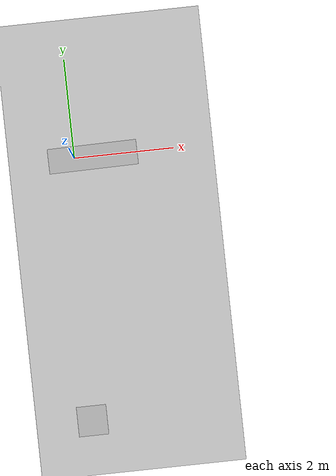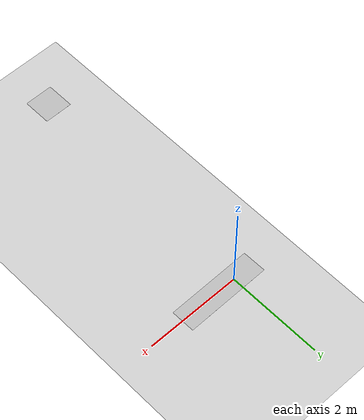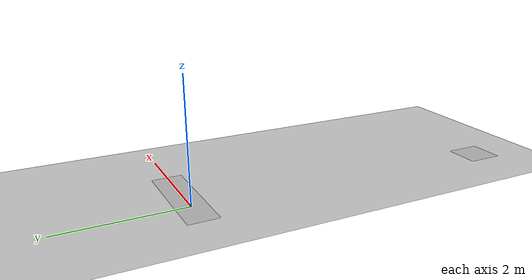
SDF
<sdf version="1.6">
 <world name="default">
  <light name="sun" type="directional">
   <pose>0 0 10 0 -0 0</pose>
   <diffuse>0.8 0.8 0.8 1</diffuse>
   <specular>0.2 0.2 0.2 1</specular>
   <attenuation>
    <range>1000</range>
    <constant>0.9</constant>
    <linear>0.01</linear>
    <quadratic>0.001</quadratic>
   </attenuation>
   <direction>-0.5 0.1 -0.9</direction>
  </light>
  <model name="ground_plane">
   <static>1</static>
   <link name="link">
    <collision name="collision">
     <geometry><plane><normal>0 0 1</normal><size>100 100</size></plane></geometry>
     <surface>
      <contact><collide_bitmask>65535</collide_bitmask></contact>
      <friction><ode><mu>100</mu><mu2>50</mu2></ode></friction>
     </surface>
    </collision>
    <visual name="visual">
     <cast_shadows>0</cast_shadows>
     <geometry><plane><normal>0 0 1</normal><size>100 100</size></plane></geometry>
     <material>
      <script><uri>file://media/materials/scripts/gazebo.material</uri><name>Gazebo/Grey</name></script>
     </material>
    </visual>
   </link>
  </model>
  <gravity>0 0 -9.8</gravity>
  <magnetic_field>6e-06 2.3e-05 -4.2e-05</magnetic_field>
  <atmosphere type="adiabatic"/>
  <physics name="default_physics" default="0" type="ode">
   <max_step_size>0.001</max_step_size>
   <real_time_factor>1</real_time_factor>
   <real_time_update_rate>1000</real_time_update_rate>
  </physics>
  <scene><ambient>0.4 0.4 0.4 1</ambient><background>0.7 0.7 0.7 1</background><shadows>1</shadows></scene>
  <audio><device>default</device></audio>
  <spherical_coordinates>
   <surface_model>EARTH_WGS84</surface_model>
   <latitude_deg>0</latitude_deg>
   <longitude_deg>0</longitude_deg>
   <elevation>0</elevation>
   <heading_deg>0</heading_deg>
  </spherical_coordinates>
  <model name="start_plane">
   <static>1</static>
   <link name="link">
    <collision name="collision">
     <geometry><plane><normal>0 0 1</normal><size>0.5 1.8</size></plane></geometry>
     <surface><friction><ode><mu>100</mu><mu2>50</mu2></ode></friction></surface>
    </collision>
    <visual name="visual">
     <cast_shadows>0</cast_shadows>
     <geometry><plane><normal>0 0 1</normal><size>0.5 1.8</size></plane></geometry>
     <material>
      <script>
       <uri>model://start_plane/materials/scripts</uri>
       <uri>model://start_plane/materials/textures/</uri>
       <name>StartPlane/Image</name>
      </script>
     </material>
    </visual>
   </link>
   <pose>0.365307 -0.005 0 0 0 -1.56</pose>
  </model>
  <model name="end_plane">
   <static>1</static>
   <link name="link">
    <collision name="collision">
     <geometry><plane><normal>0 0 1</normal><size>0.6 0.6</size></plane></geometry>
     <surface><friction><ode><mu>100</mu><mu2>50</mu2></ode></friction></surface>
    </collision>
    <visual name="visual">
     <cast_shadows>0</cast_shadows>
     <geometry><plane><normal>0 0 1</normal><size>0.6 0.6</size></plane></geometry>
     <material>
      <script>
       <uri>model://end_plane/materials/scripts</uri>
       <uri>model://end_plane/materials/textures/</uri>
       <name>EndPlane/Image</name>
      </script>
     </material>
    </visual>
   </link>
   <pose>-0.202 -5.296 0 0 0 -1.57</pose>
  </model>
 </world>
</sdf>
